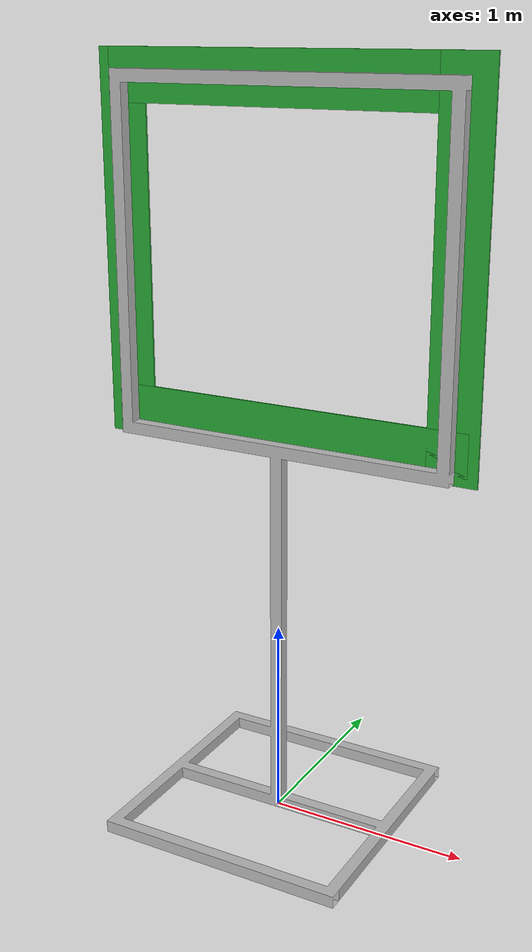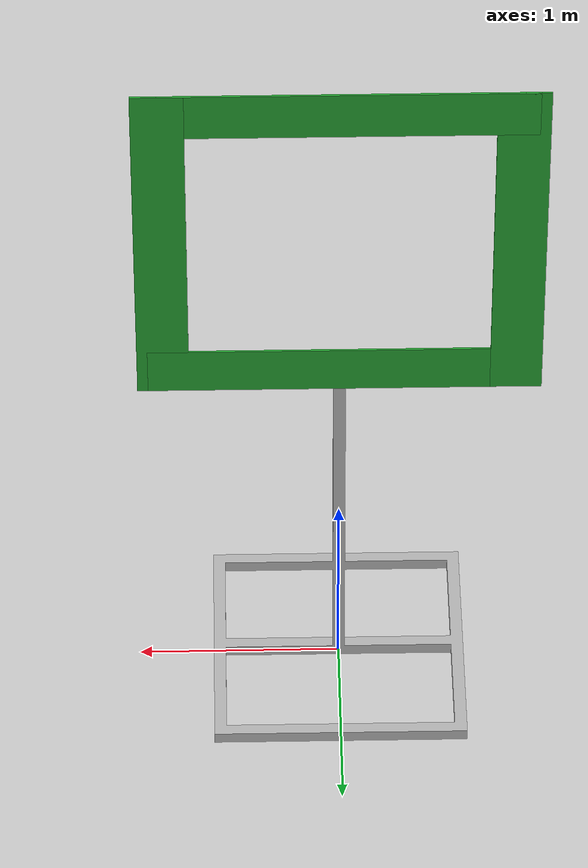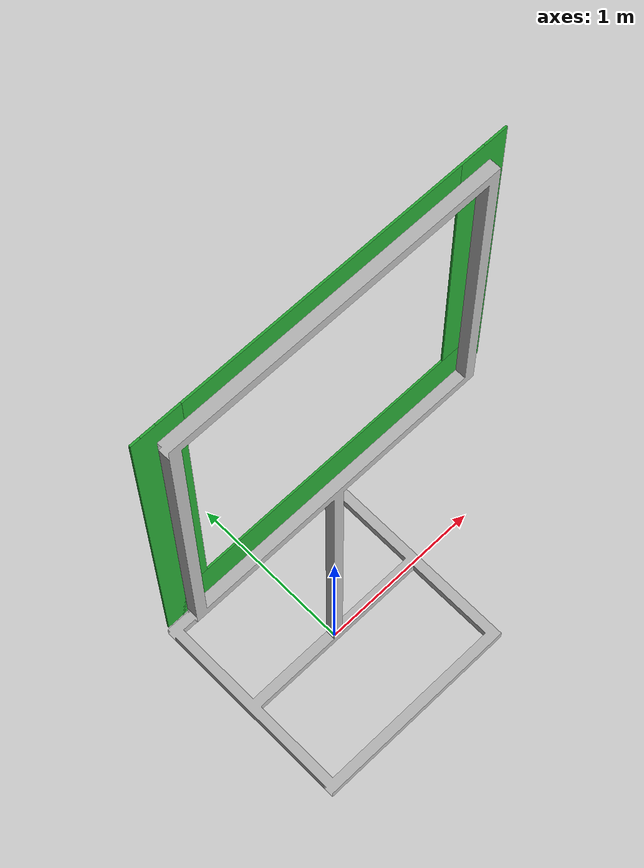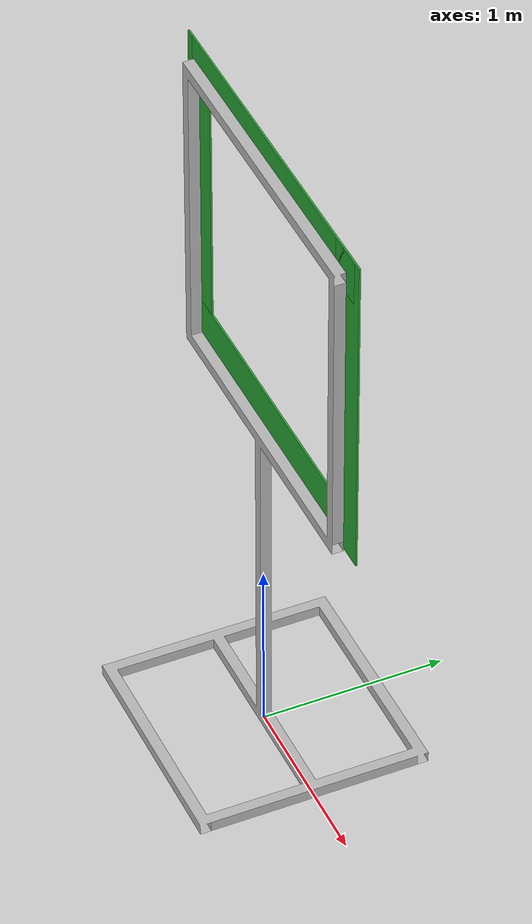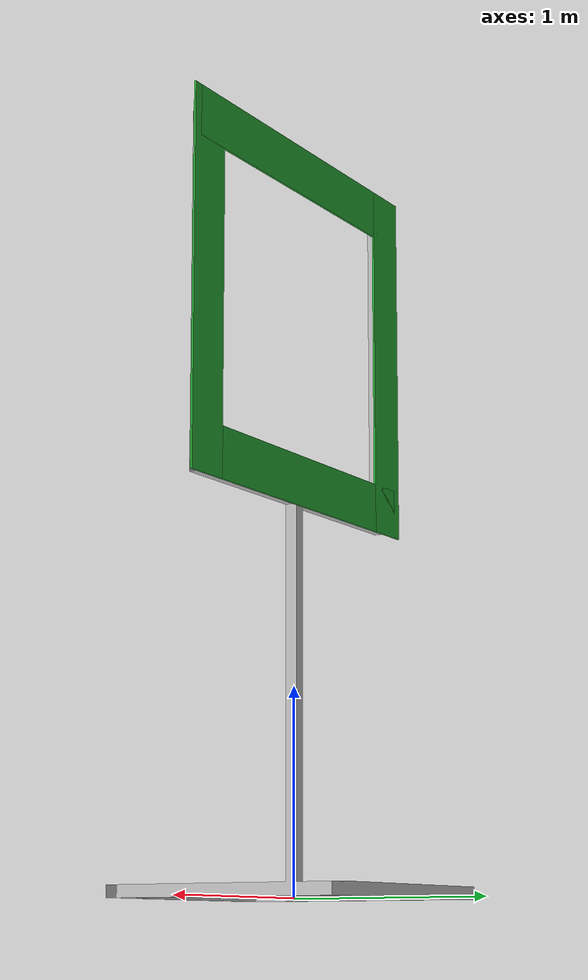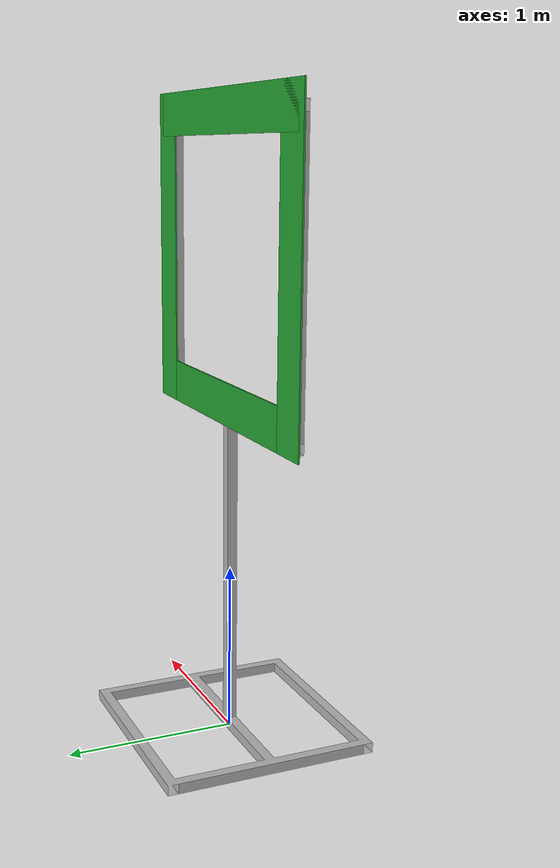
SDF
<?xml version="1.0" ?>
<sdf version="1.6">
  <model name="custom_gate">
    <static>true</static>
    <pose>0 0 0 0 0 0</pose>

    <!-- Detection Envelopes -->
    <link name="paper_back0">
      <pose>0 0.05 2 0 0 0</pose>
      <collision name="collision">
        <geometry>
          <box>
            <size>0.1 0.01 0.1</size>
          </box>
        </geometry>
      </collision>
      <visual name="visual">
        <geometry>
          <box>
            <size>1.85 0.01 0.25</size>
          </box>
        </geometry>
          <material>
            <script>
              <name>Gazebo/Green</name>
            </script>
          </material>
      </visual>
    </link>

    <link name="paper_back1">
      <pose>0.85 0.05 2.8 0 1.57 0</pose>
      <collision name="collision">
        <geometry>
          <box>
            <size>0.1 0.01 0.1</size>
          </box>
        </geometry>
      </collision>
      <visual name="visual">
        <geometry>
          <box>
            <size>1.85 0.01 0.25</size>
          </box>
        </geometry>
          <material>
            <script>
              <name>Gazebo/Green</name>
            </script>
          </material>
      </visual>
    </link>

    <link name="paper_back2">
      <pose>-0.85 0.05 2.8 0 1.57 0</pose>
      <collision name="collision">
        <geometry>
          <box>
            <size>0.1 0.01 0.1</size>
          </box>
        </geometry>
      </collision>
      <visual name="visual">
        <geometry>
          <box>
            <size>1.85 0.01 0.25</size>
          </box>
        </geometry>
          <material>
            <script>
              <name>Gazebo/Green</name>
            </script>
          </material>
      </visual>
    </link>

    <link name="paper_back3">
      <pose>0 0.05 3.6 0 0 0</pose>
      <collision name="collision">
        <geometry>
          <box>
            <size>0.1 0.01 0.1</size>
          </box>
        </geometry>
      </collision>
      <visual name="visual">
        <geometry>
          <box>
            <size>1.85 0.01 0.25</size>
          </box>
        </geometry>
          <material>
            <script>
              <name>Gazebo/Green</name>
            </script>
          </material>
      </visual>
    </link>

    <!-- Gate Model -->
    <link name='dronerace_gate'>
      <pose>0 0 0 0 0 0</pose>
      <visual name='gate_visual'>
        <geometry>
          <mesh>
            <uri>model://dronerace_gate_2018/normal_gate_2018.dae</uri>
            <scale>1.2 1.2 1.2</scale>
          </mesh>
        </geometry>
      </visual>
      <collision name='gate_collision'>
        <geometry>
          <mesh>
            <uri>model://dronerace_gate_2018/normal_gate_2018.dae</uri>
            <scale>1.2 1.2 1.2</scale>
          </mesh>
        </geometry>
        <max_contacts>10</max_contacts>
        <surface>
          <contact>
            <ode/>
          </contact>
          <bounce/>
          <friction>
            <torsional>
              <ode/>
            </torsional>
            <ode/>
          </friction>
        </surface>
      </collision>
    </link>
  </model>
</sdf>
